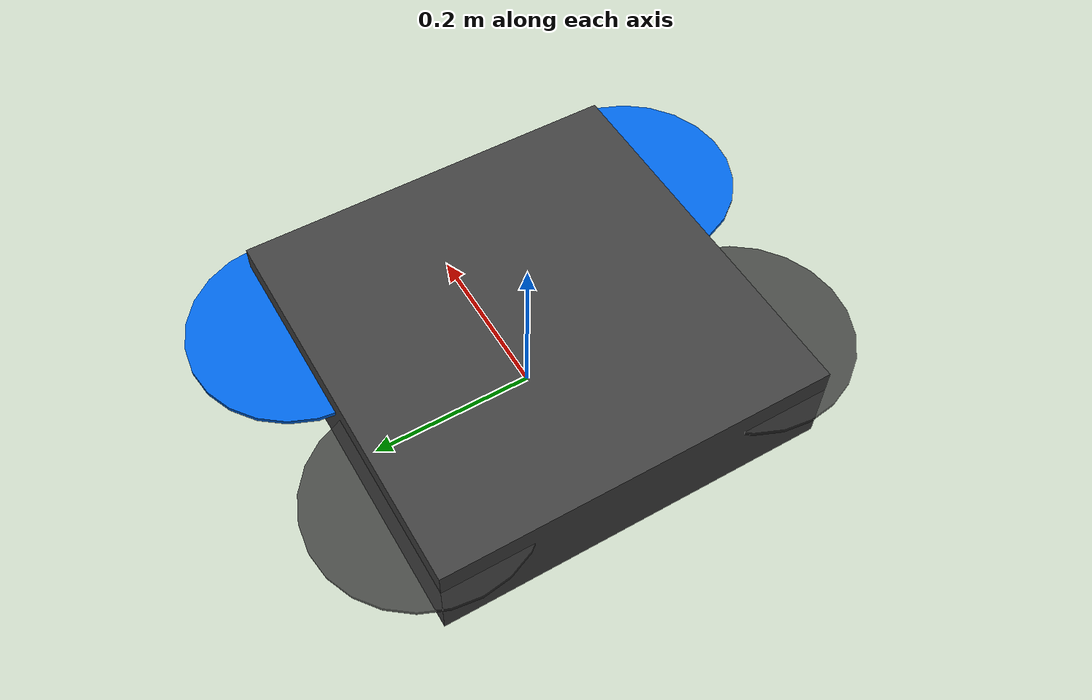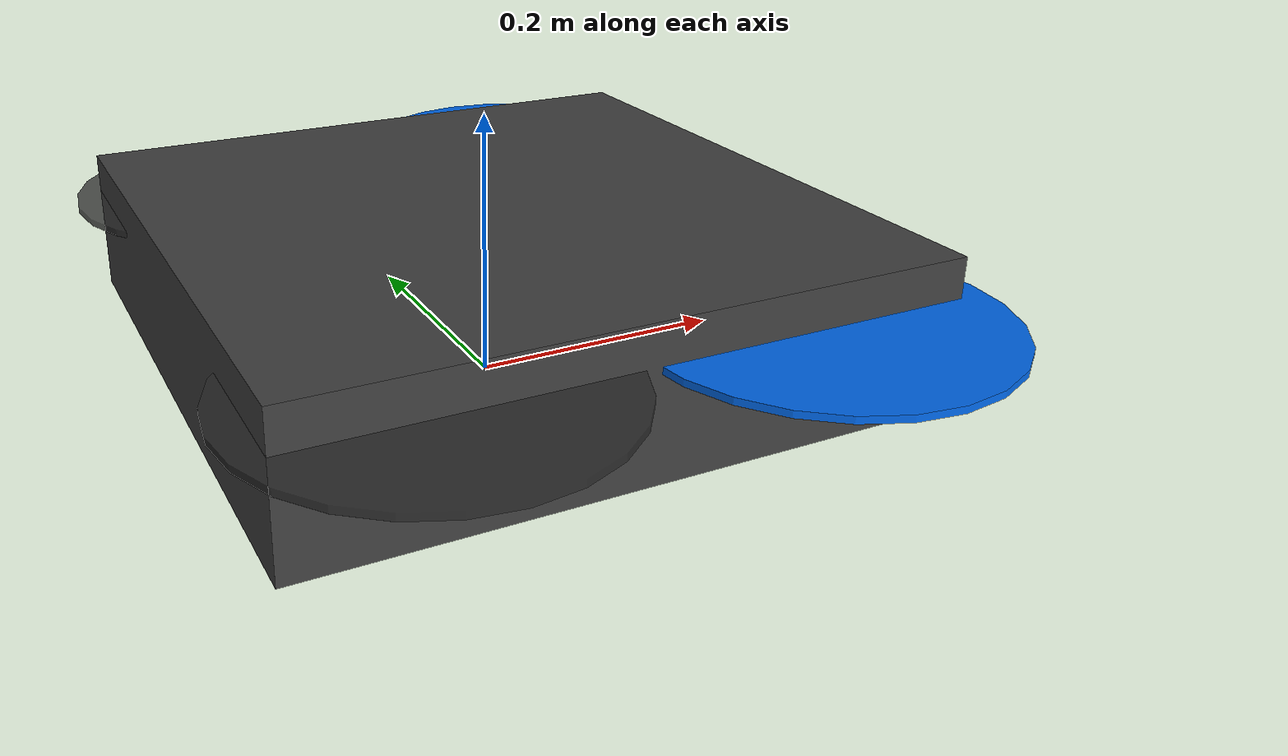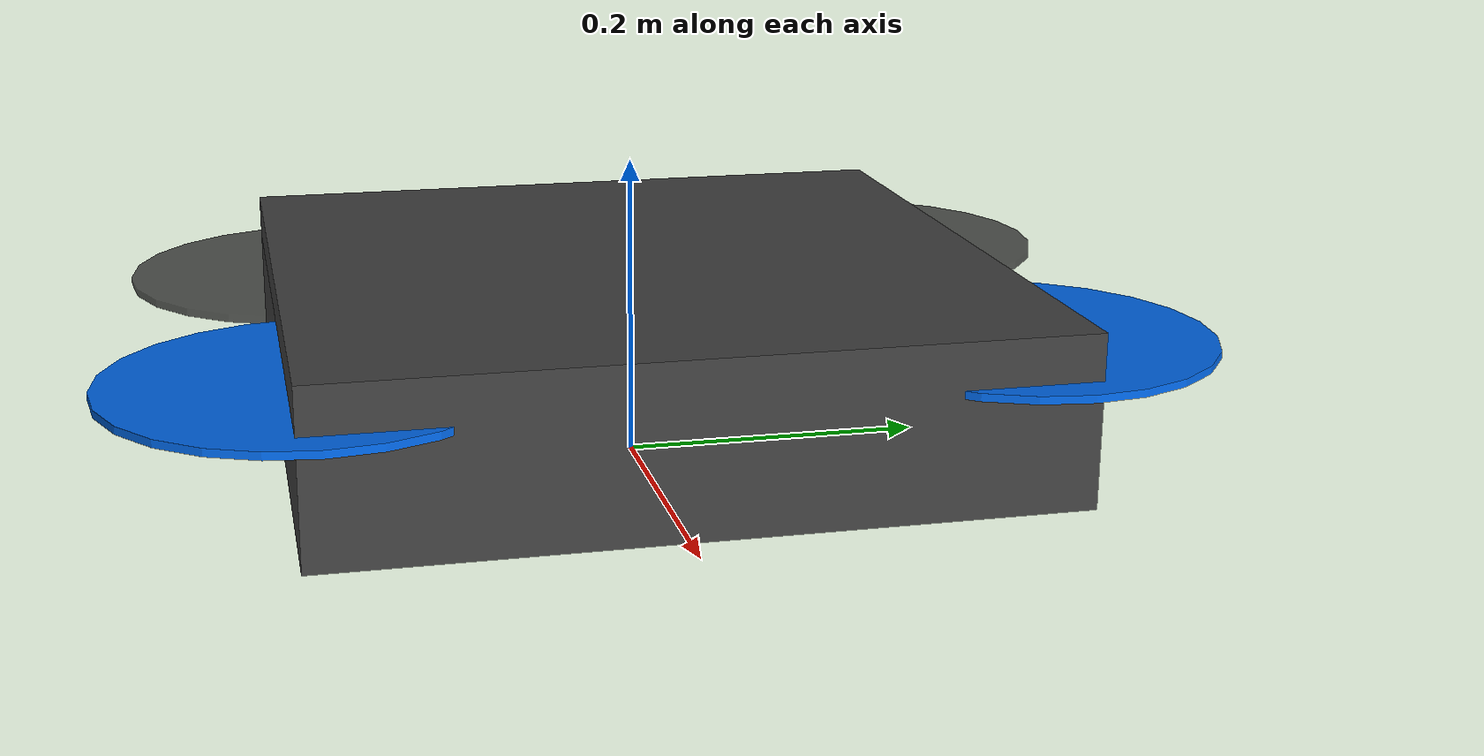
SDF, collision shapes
<sdf version="1.9">
  <model name="iris_base">
    <!-- Pose awal dinaikkan ke Z=0.08 agar kaki landing gear bertumpu mulus di tanah -->
    <pose>0 0 0.08 0 0 0</pose>

    <!-- BAGIAN UTAMA (MAIN BODY 3DR IRIS) -->
    <link name="base_link">
      <enable_wind>true</enable_wind>
      <inertial>
        <pose>0 0 0 0 0 0</pose>
        <mass>1.50</mass>  <!-- Benchmark 3DR Iris standar PX4 -->
        <inertia>
          <ixx>0.029125</ixx><iyy>0.029125</iyy><izz>0.055225</izz>
          <ixy>0</ixy><ixz>0</ixz><iyz>0</iyz>
        </inertia>
      </inertial>

      <!-- Visual 3D Mesh Asli 3DR Iris -->
      <visual name="body_visual">
        <pose>0 0 0 0 0 0</pose>
        <geometry>
          <mesh>
            <scale>1 1 1</scale>
            <uri>model://iris_base/meshes/iris.stl</uri>
          </mesh>
        </geometry>
        <material>
          <ambient>0.25 0.25 0.25 1.0</ambient>
          <diffuse>0.25 0.25 0.25 1.0</diffuse>
        </material>
      </visual>

      <collision name="body_collision">
        <pose>0 0 0 0 0 0</pose>
        <geometry>
          <box>
            <size>0.47 0.47 0.11</size>
          </box>
        </geometry>
      </collision>

      <!-- VIRTUAL 2D LIDAR SENSOR (Dipasang di Dek Atas z=+0.08m) -->
      <visual name="lidar_mount_visual">
        <pose>0 0 0.06 0 0 0</pose>
        <geometry><cylinder><radius>0.035</radius><length>0.04</length></cylinder></geometry>
        <material><ambient>0.1 0.1 0.1 1</ambient><diffuse>0.1 0.1 0.1 1</diffuse></material>
      </visual>

      <sensor name='gpu_lidar' type='gpu_lidar'>
        <pose>0 0 0.08 0 0 0</pose>
        <frame_id>base_link</frame_id>
        <update_rate>10</update_rate>
        <ray>
          <scan>
            <horizontal>
              <samples>360</samples>
              <resolution>1</resolution>
              <min_angle>-3.14159</min_angle>
              <max_angle>3.14159</max_angle>
            </horizontal>
          </scan>
          <range>
            <min>0.22</min> <!-- Filter self-occlusion bodi/lengan drone -->
            <max>12.0</max>
            <resolution>0.01</resolution>
          </range>
        </ray>
        <always_on>1</always_on>
        <visualize>true</visualize>
      </sensor>
    </link>

    <!-- BALING-BALING 0 (Depan Kanan, Berlawanan Arah Jarum Jam - CCW) -->
    <link name="rotor_0">
      <pose>0.13 -0.22 0.023 0 0 0</pose>
      <inertial><mass>0.005</mass><inertia><ixx>1.25e-05</ixx><iyy>1.25e-05</iyy><izz>2.5e-05</izz></inertia></inertial>
      <visual name="rotor_0_visual">
        <geometry>
          <mesh>
            <scale>1 1 1</scale>
            <uri>model://iris_base/meshes/iris_prop_ccw.dae</uri>
          </mesh>
        </geometry>
        <material><ambient>0 0.4 0.9 0.9</ambient><diffuse>0 0.4 0.9 0.9</diffuse></material>
      </visual>
      <collision name="rotor_0_collision">
        <geometry><cylinder><radius>0.128</radius><length>0.005</length></cylinder></geometry>
      </collision>
    </link>
    <joint name="rotor_0_joint" type="revolute">
      <child>rotor_0</child><parent>base_link</parent>
      <axis><xyz>0 0 1</xyz><limit><lower>-1e16</lower><upper>1e16</upper></limit><dynamics><damping>0.005</damping><friction>0.01</friction></dynamics></axis>
    </joint>

    <!-- BALING-BALING 1 (Belakang Kiri, Berlawanan Arah Jarum Jam - CCW) -->
    <link name="rotor_1">
      <pose>-0.13 0.20 0.023 0 0 0</pose>
      <inertial><mass>0.005</mass><inertia><ixx>1.25e-05</ixx><iyy>1.25e-05</iyy><izz>2.5e-05</izz></inertia></inertial>
      <visual name="rotor_1_visual">
        <geometry>
          <mesh>
            <scale>1 1 1</scale>
            <uri>model://iris_base/meshes/iris_prop_ccw.dae</uri>
          </mesh>
        </geometry>
        <material><ambient>0.2 0.2 0.2 0.8</ambient><diffuse>0.2 0.2 0.2 0.8</diffuse></material>
      </visual>
      <collision name="rotor_1_collision">
        <geometry><cylinder><radius>0.128</radius><length>0.005</length></cylinder></geometry>
      </collision>
    </link>
    <joint name="rotor_1_joint" type="revolute">
      <child>rotor_1</child><parent>base_link</parent>
      <axis><xyz>0 0 1</xyz><limit><lower>-1e16</lower><upper>1e16</upper></limit><dynamics><damping>0.005</damping><friction>0.01</friction></dynamics></axis>
    </joint>

    <!-- BALING-BALING 2 (Depan Kiri, Searah Jarum Jam - CW) -->
    <link name="rotor_2">
      <pose>0.13 0.22 0.023 0 0 0</pose>
      <inertial><mass>0.005</mass><inertia><ixx>1.25e-05</ixx><iyy>1.25e-05</iyy><izz>2.5e-05</izz></inertia></inertial>
      <visual name="rotor_2_visual">
        <geometry>
          <mesh>
            <scale>1 1 1</scale>
            <uri>model://iris_base/meshes/iris_prop_cw.dae</uri>
          </mesh>
        </geometry>
        <material><ambient>0 0.4 0.9 0.9</ambient><diffuse>0 0.4 0.9 0.9</diffuse></material>
      </visual>
      <collision name="rotor_2_collision">
        <geometry><cylinder><radius>0.128</radius><length>0.005</length></cylinder></geometry>
      </collision>
    </link>
    <joint name="rotor_2_joint" type="revolute">
      <child>rotor_2</child><parent>base_link</parent>
      <axis><xyz>0 0 1</xyz><limit><lower>-1e16</lower><upper>1e16</upper></limit><dynamics><damping>0.005</damping><friction>0.01</friction></dynamics></axis>
    </joint>

    <!-- BALING-BALING 3 (Belakang Kanan, Searah Jarum Jam - CW) -->
    <link name="rotor_3">
      <pose>-0.13 -0.20 0.023 0 0 0</pose>
      <inertial><mass>0.005</mass><inertia><ixx>1.25e-05</ixx><iyy>1.25e-05</iyy><izz>2.5e-05</izz></inertia></inertial>
      <visual name="rotor_3_visual">
        <geometry>
          <mesh>
            <scale>1 1 1</scale>
            <uri>model://iris_base/meshes/iris_prop_cw.dae</uri>
          </mesh>
        </geometry>
        <material><ambient>0.2 0.2 0.2 0.8</ambient><diffuse>0.2 0.2 0.2 0.8</diffuse></material>
      </visual>
      <collision name="rotor_3_collision">
        <geometry><cylinder><radius>0.128</radius><length>0.005</length></cylinder></geometry>
      </collision>
    </link>
    <joint name="rotor_3_joint" type="revolute">
      <child>rotor_3</child><parent>base_link</parent>
      <axis><xyz>0 0 1</xyz><limit><lower>-1e16</lower><upper>1e16</upper></limit><dynamics><damping>0.005</damping><friction>0.01</friction></dynamics></axis>
    </joint>

    <!-- PLUGIN SENSOR: Ground Truth Odometry untuk Akuisisi Data -->
    <plugin
      filename="gz-sim-odometry-publisher-system"
      name="gz::sim::systems::OdometryPublisher">
      <odom_frame>world</odom_frame>
      <robot_base_frame>base_link</robot_base_frame>
      <odom_publish_frequency>250</odom_publish_frequency>
      <dimensions>3</dimensions>
    </plugin>

    <!-- PLUGIN: MOTOR 0 (Front Right - CCW) -->
    <plugin filename="gz-sim-multicopter-motor-model-system" name="gz::sim::systems::MulticopterMotorModel">
      <jointName>rotor_0_joint</jointName>
      <linkName>rotor_0</linkName>
      <turningDirection>ccw</turningDirection>
      <timeConstantUp>0.02</timeConstantUp>
      <timeConstantDown>0.02</timeConstantDown>
      <maxRotVelocity>1100.0</maxRotVelocity>
      <motorConstant>8.54858e-06</motorConstant>
      <motorType>velocity</motorType>
      <momentConstant>0.016</momentConstant>
      <commandSubTopic>command/motor_speed</commandSubTopic>
      <actuator_number>0</actuator_number>
      <rotorDragCoefficient>0.000175</rotorDragCoefficient>
      <rollingMomentCoefficient>1e-06</rollingMomentCoefficient>
      <rotorVelocitySlowdownSim>2</rotorVelocitySlowdownSim>
    </plugin>

    <!-- PLUGIN: MOTOR 1 (Rear Left - CCW) -->
    <plugin filename="gz-sim-multicopter-motor-model-system" name="gz::sim::systems::MulticopterMotorModel">
      <jointName>rotor_1_joint</jointName>
      <linkName>rotor_1</linkName>
      <turningDirection>ccw</turningDirection>
      <timeConstantUp>0.02</timeConstantUp>
      <timeConstantDown>0.02</timeConstantDown>
      <maxRotVelocity>1100.0</maxRotVelocity>
      <motorConstant>8.54858e-06</motorConstant>
      <motorType>velocity</motorType>
      <momentConstant>0.016</momentConstant>
      <commandSubTopic>command/motor_speed</commandSubTopic>
      <actuator_number>1</actuator_number>
      <rotorDragCoefficient>0.000175</rotorDragCoefficient>
      <rollingMomentCoefficient>1e-06</rollingMomentCoefficient>
      <rotorVelocitySlowdownSim>2</rotorVelocitySlowdownSim>
    </plugin>

    <!-- PLUGIN: MOTOR 2 (Front Left - CW) -->
    <plugin filename="gz-sim-multicopter-motor-model-system" name="gz::sim::systems::MulticopterMotorModel">
      <jointName>rotor_2_joint</jointName>
      <linkName>rotor_2</linkName>
      <turningDirection>cw</turningDirection>
      <timeConstantUp>0.02</timeConstantUp>
      <timeConstantDown>0.02</timeConstantDown>
      <maxRotVelocity>1100.0</maxRotVelocity>
      <motorConstant>8.54858e-06</motorConstant>
      <motorType>velocity</motorType>
      <momentConstant>0.016</momentConstant>
      <commandSubTopic>command/motor_speed</commandSubTopic>
      <actuator_number>2</actuator_number>
      <rotorDragCoefficient>0.000175</rotorDragCoefficient>
      <rollingMomentCoefficient>1e-06</rollingMomentCoefficient>
      <rotorVelocitySlowdownSim>2</rotorVelocitySlowdownSim>
    </plugin>

    <!-- PLUGIN: MOTOR 3 (Rear Right - CW) -->
    <plugin filename="gz-sim-multicopter-motor-model-system" name="gz::sim::systems::MulticopterMotorModel">
      <jointName>rotor_3_joint</jointName>
      <linkName>rotor_3</linkName>
      <turningDirection>cw</turningDirection>
      <timeConstantUp>0.02</timeConstantUp>
      <timeConstantDown>0.02</timeConstantDown>
      <maxRotVelocity>1100.0</maxRotVelocity>
      <motorConstant>8.54858e-06</motorConstant>
      <motorType>velocity</motorType>
      <momentConstant>0.016</momentConstant>
      <commandSubTopic>command/motor_speed</commandSubTopic>
      <actuator_number>3</actuator_number>
      <rotorDragCoefficient>0.000175</rotorDragCoefficient>
      <rollingMomentCoefficient>1e-06</rollingMomentCoefficient>
      <rotorVelocitySlowdownSim>2</rotorVelocitySlowdownSim>
    </plugin>
  </model>
</sdf>
